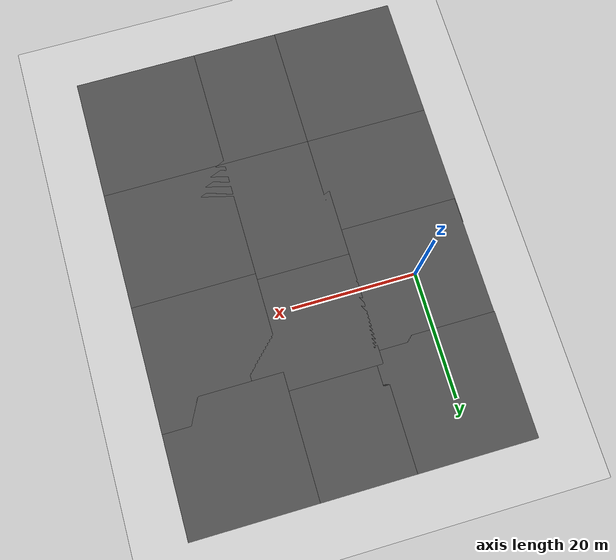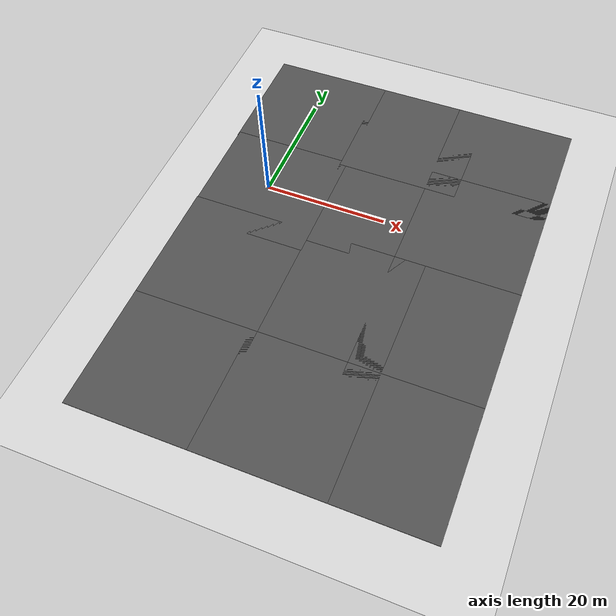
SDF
<sdf version="1.4">
 <world name="default">
  <light name="sun" type="directional">
   <pose>0 0 10 0 -0 0</pose>
   <diffuse>0.8 0.8 0.8 1</diffuse>
   <specular>0.2 0.2 0.2 1</specular>
   <attenuation>
    <range>1000</range>
    <constant>0.9</constant>
    <linear>0.01</linear>
    <quadratic>0.001</quadratic>
   </attenuation>
   <direction>-0.5 0.1 -0.9</direction>
  </light>
  <model name="ground_plane">
   <static>1</static>
   <link name="link">
    <collision name="collision">
     <geometry><plane><normal>0 0 1</normal><size>100 100</size></plane></geometry>
     <surface><friction><ode><mu>100</mu><mu2>50</mu2></ode></friction></surface>
    </collision>
    <visual name="visual">
     <cast_shadows>0</cast_shadows>
     <geometry><plane><normal>0 0 1</normal><size>100 100</size></plane></geometry>
     <material>
      <script><uri>file://media/materials/scripts/gazebo.material</uri><name>Gazebo/Grey</name></script>
     </material>
    </visual>
    <velocity_decay><linear>0</linear><angular>0</angular></velocity_decay>
   </link>
  </model>
  <physics type="ode">
   <max_step_size>0.01</max_step_size>
   <real_time_factor>1</real_time_factor>
   <real_time_update_rate>100</real_time_update_rate>
   <gravity>0 0 -9.8</gravity>
  </physics>
  <scene><ambient>0.4 0.4 0.4 1</ambient><background>0.7 0.7 0.7 1</background><shadows>1</shadows></scene>
  <model name="asphalt_plane">
   <static>1</static>
   <link name="link">
    <collision name="collision"><geometry><box><size>20 20 0.1</size></box></geometry></collision>
    <visual name="visual">
     <cast_shadows>0</cast_shadows>
     <geometry><box><size>20 20 0.1</size></box></geometry>
     <material>
      <script>
       <uri>model://asphalt_plane/materials/scripts</uri>
       <uri>model://asphalt_plane/materials/textures</uri>
       <name>vrc/asphalt</name>
      </script>
     </material>
    </visual>
    <velocity_decay><linear>0</linear><angular>0</angular></velocity_decay>
   </link>
   <pose>0.076733 -0.110379 0 0 -0 0</pose>
  </model>
  <spherical_coordinates>
   <surface_model>EARTH_WGS84</surface_model>
   <latitude_deg>0</latitude_deg>
   <longitude_deg>0</longitude_deg>
   <elevation>0</elevation>
   <heading_deg>0</heading_deg>
  </spherical_coordinates>
  <model name="asphalt_plane_0">
   <static>1</static>
   <link name="link">
    <collision name="collision"><geometry><box><size>20 20 0.1</size></box></geometry></collision>
    <visual name="visual">
     <cast_shadows>0</cast_shadows>
     <geometry><box><size>20 20 0.1</size></box></geometry>
     <material>
      <script>
       <uri>model://asphalt_plane/materials/scripts</uri>
       <uri>model://asphalt_plane/materials/textures</uri>
       <name>vrc/asphalt</name>
      </script>
     </material>
    </visual>
    <velocity_decay><linear>0</linear><angular>0</angular></velocity_decay>
   </link>
   <pose>0 -16 0 0 -0 0</pose>
  </model>
  <model name="asphalt_plane_3">
   <static>1</static>
   <link name="link">
    <collision name="collision"><geometry><box><size>20 20 0.1</size></box></geometry></collision>
    <visual name="visual">
     <cast_shadows>0</cast_shadows>
     <geometry><box><size>20 20 0.1</size></box></geometry>
     <material>
      <script>
       <uri>model://asphalt_plane/materials/scripts</uri>
       <uri>model://asphalt_plane/materials/textures</uri>
       <name>vrc/asphalt</name>
      </script>
     </material>
    </visual>
    <velocity_decay><linear>0</linear><angular>0</angular></velocity_decay>
   </link>
   <pose>0 19 0 0 -0 0</pose>
  </model>
  <model name="asphalt_plane_5">
   <static>1</static>
   <link name="link">
    <collision name="collision"><geometry><box><size>20 20 0.1</size></box></geometry></collision>
    <visual name="visual">
     <cast_shadows>0</cast_shadows>
     <geometry><box><size>20 20 0.1</size></box></geometry>
     <material>
      <script>
       <uri>model://asphalt_plane/materials/scripts</uri>
       <uri>model://asphalt_plane/materials/textures</uri>
       <name>vrc/asphalt</name>
      </script>
     </material>
    </visual>
    <velocity_decay><linear>0</linear><angular>0</angular></velocity_decay>
   </link>
   <pose>19 -16 0 0 -0 0</pose>
  </model>
  <model name="asphalt_plane_6">
   <static>1</static>
   <link name="link">
    <collision name="collision"><geometry><box><size>20 20 0.1</size></box></geometry></collision>
    <visual name="visual">
     <cast_shadows>0</cast_shadows>
     <geometry><box><size>20 20 0.1</size></box></geometry>
     <material>
      <script>
       <uri>model://asphalt_plane/materials/scripts</uri>
       <uri>model://asphalt_plane/materials/textures</uri>
       <name>vrc/asphalt</name>
      </script>
     </material>
    </visual>
    <velocity_decay><linear>0</linear><angular>0</angular></velocity_decay>
   </link>
   <pose>19 2 0 0 -0 0</pose>
  </model>
  <model name="asphalt_plane_7">
   <static>1</static>
   <link name="link">
    <collision name="collision"><geometry><box><size>20 20 0.1</size></box></geometry></collision>
    <visual name="visual">
     <cast_shadows>0</cast_shadows>
     <geometry><box><size>20 20 0.1</size></box></geometry>
     <material>
      <script>
       <uri>model://asphalt_plane/materials/scripts</uri>
       <uri>model://asphalt_plane/materials/textures</uri>
       <name>vrc/asphalt</name>
      </script>
     </material>
    </visual>
    <velocity_decay><linear>0</linear><angular>0</angular></velocity_decay>
   </link>
   <pose>19 19 0 0 -0 0</pose>
  </model>
  <model name="asphalt_plane_8">
   <static>1</static>
   <link name="link">
    <collision name="collision"><geometry><box><size>20 20 0.1</size></box></geometry></collision>
    <visual name="visual">
     <cast_shadows>0</cast_shadows>
     <geometry><box><size>20 20 0.1</size></box></geometry>
     <material>
      <script>
       <uri>model://asphalt_plane/materials/scripts</uri>
       <uri>model://asphalt_plane/materials/textures</uri>
       <name>vrc/asphalt</name>
      </script>
     </material>
    </visual>
    <velocity_decay><linear>0</linear><angular>0</angular></velocity_decay>
   </link>
   <pose>34 -16 0 0 -0 0</pose>
  </model>
  <model name="asphalt_plane_9">
   <static>1</static>
   <link name="link">
    <collision name="collision"><geometry><box><size>20 20 0.1</size></box></geometry></collision>
    <visual name="visual">
     <cast_shadows>0</cast_shadows>
     <geometry><box><size>20 20 0.1</size></box></geometry>
     <material>
      <script>
       <uri>model://asphalt_plane/materials/scripts</uri>
       <uri>model://asphalt_plane/materials/textures</uri>
       <name>vrc/asphalt</name>
      </script>
     </material>
    </visual>
    <velocity_decay><linear>0</linear><angular>0</angular></velocity_decay>
   </link>
   <pose>34 3 0 0 -0 0</pose>
  </model>
  <model name="asphalt_plane_10">
   <static>1</static>
   <link name="link">
    <collision name="collision"><geometry><box><size>20 20 0.1</size></box></geometry></collision>
    <visual name="visual">
     <cast_shadows>0</cast_shadows>
     <geometry><box><size>20 20 0.1</size></box></geometry>
     <material>
      <script>
       <uri>model://asphalt_plane/materials/scripts</uri>
       <uri>model://asphalt_plane/materials/textures</uri>
       <name>vrc/asphalt</name>
      </script>
     </material>
    </visual>
    <velocity_decay><linear>0</linear><angular>0</angular></velocity_decay>
   </link>
   <pose>34 19 0 0 -0 0</pose>
  </model>
  <model name="asphalt_plane_11">
   <static>1</static>
   <link name="link">
    <collision name="collision"><geometry><box><size>20 20 0.1</size></box></geometry></collision>
    <visual name="visual">
     <cast_shadows>0</cast_shadows>
     <geometry><box><size>20 20 0.1</size></box></geometry>
     <material>
      <script>
       <uri>model://asphalt_plane/materials/scripts</uri>
       <uri>model://asphalt_plane/materials/textures</uri>
       <name>vrc/asphalt</name>
      </script>
     </material>
    </visual>
    <velocity_decay><linear>0</linear><angular>0</angular></velocity_decay>
   </link>
   <pose>0 -36 0 0 -0 0</pose>
  </model>
  <model name="asphalt_plane_12">
   <static>1</static>
   <link name="link">
    <collision name="collision"><geometry><box><size>20 20 0.1</size></box></geometry></collision>
    <visual name="visual">
     <cast_shadows>0</cast_shadows>
     <geometry><box><size>20 20 0.1</size></box></geometry>
     <material>
      <script>
       <uri>model://asphalt_plane/materials/scripts</uri>
       <uri>model://asphalt_plane/materials/textures</uri>
       <name>vrc/asphalt</name>
      </script>
     </material>
    </visual>
    <velocity_decay><linear>0</linear><angular>0</angular></velocity_decay>
   </link>
   <pose>19 -36 0 0 -0 0</pose>
  </model>
  <model name="asphalt_plane_13">
   <static>1</static>
   <link name="link">
    <collision name="collision"><geometry><box><size>20 20 0.1</size></box></geometry></collision>
    <visual name="visual">
     <cast_shadows>0</cast_shadows>
     <geometry><box><size>20 20 0.1</size></box></geometry>
     <material>
      <script>
       <uri>model://asphalt_plane/materials/scripts</uri>
       <uri>model://asphalt_plane/materials/textures</uri>
       <name>vrc/asphalt</name>
      </script>
     </material>
    </visual>
    <velocity_decay><linear>0</linear><angular>0</angular></velocity_decay>
   </link>
   <pose>34 -36 0 0 -0 0</pose>
  </model>
 </world>
</sdf>
